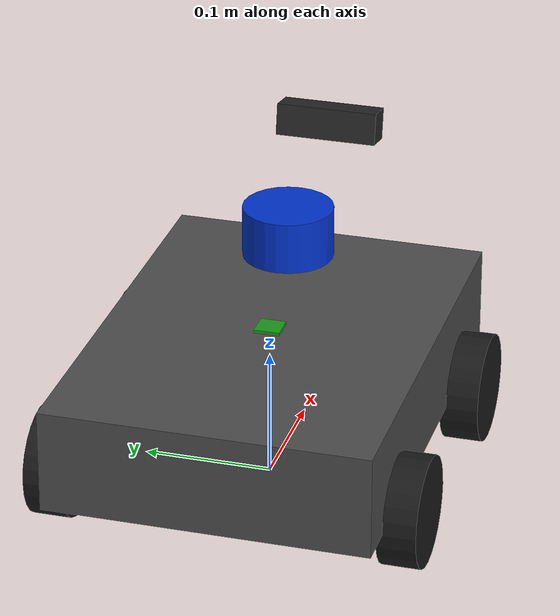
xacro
<?xml version="1.0"?>
<robot name="rover" xmlns:xacro="http://www.ros.org/wiki/xacro">

  <!-- Arguments -->
  <xacro:arg name="use_sim_time" default="false"/>
  <xacro:arg name="use_gazebo" default="true"/>

  <!-- Include modular xacro files -->
  <xacro:include filename="$(find rover_description)/urdf/inertial_macros.xacro"/>
  <xacro:include filename="$(find rover_description)/urdf/materials.xacro"/>
  <xacro:include filename="$(find rover_description)/urdf/base.xacro"/>
  <xacro:include filename="$(find rover_description)/urdf/sensors.xacro"/>

  <!-- Gazebo plugins & ros2_control (only loaded if use_gazebo is true) -->
  <xacro:if value="$(arg use_gazebo)">
    <xacro:include filename="$(find rover_description)/urdf/gazebo_plugins.xacro"/>
  </xacro:if>

</robot>

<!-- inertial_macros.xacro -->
<robot xmlns:xacro="http://www.ros.org/wiki/xacro">

  <!-- Box inertia (aligned with principal axes, origin at CoM) -->
  <xacro:macro name="box_inertia" params="m x y z">
    <inertial>
      <mass value="${m}"/>
      <inertia
        ixx="${m * (y*y + z*z) / 12.0}" ixy="0" ixz="0"
        iyy="${m * (x*x + z*z) / 12.0}" iyz="0"
        izz="${m * (x*x + y*y) / 12.0}"/>
    </inertial>
  </xacro:macro>

  <!-- Cylinder inertia (axis along z by default) -->
  <xacro:macro name="cylinder_inertia" params="m r h">
    <inertial>
      <mass value="${m}"/>
      <inertia
        ixx="${m * (3.0*r*r + h*h) / 12.0}" ixy="0" ixz="0"
        iyy="${m * (3.0*r*r + h*h) / 12.0}" iyz="0"
        izz="${m * r * r / 2.0}"/>
    </inertial>
  </xacro:macro>

  <!-- Sphere inertia -->
  <xacro:macro name="sphere_inertia" params="m r">
    <inertial>
      <mass value="${m}"/>
      <inertia
        ixx="${2.0 * m * r * r / 5.0}" ixy="0" ixz="0"
        iyy="${2.0 * m * r * r / 5.0}" iyz="0"
        izz="${2.0 * m * r * r / 5.0}"/>
    </inertial>
  </xacro:macro>

</robot>

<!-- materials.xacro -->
<!-- Material colour definitions for the inspection rover. -->
<robot xmlns:xacro="http://www.ros.org/wiki/xacro">

  <material name="chassis_grey">
    <color rgba="0.3 0.3 0.3 1.0"/>
  </material>

  <material name="wheel_black">
    <color rgba="0.1 0.1 0.1 1.0"/>
  </material>

  <material name="caster_silver">
    <color rgba="0.7 0.7 0.7 1.0"/>
  </material>

  <material name="lidar_blue">
    <color rgba="0.0 0.2 0.8 1.0"/>
  </material>

  <material name="camera_dark">
    <color rgba="0.15 0.15 0.15 1.0"/>
  </material>

  <material name="imu_green">
    <color rgba="0.1 0.6 0.1 1.0"/>
  </material>

</robot>

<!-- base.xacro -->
<robot xmlns:xacro="http://www.ros.org/wiki/xacro">

  <!-- Dimensions & Masses -->
  <xacro:property name="chassis_length" value="0.35"/>
  <xacro:property name="chassis_width" value="0.25"/>
  <xacro:property name="chassis_height" value="0.08"/>
  <xacro:property name="chassis_mass" value="2.5"/>

  <!-- Wheel specifications -->
  <xacro:property name="wheel_radius" value="0.0425"/>
  <xacro:property name="wheel_width" value="0.030"/>
  <xacro:property name="wheel_separation" value="0.27"/> <!-- Track width (y-axis separation) -->
  <xacro:property name="wheelbase" value="0.20"/>        <!-- Longitudinal axle separation (x-axis) -->
  <xacro:property name="wheel_mass" value="0.20"/>

  <!-- base_footprint is on the ground plane directly below base_link -->
  <link name="base_footprint"/>

  <joint name="base_footprint_joint" type="fixed">
    <parent link="base_footprint"/>
    <child link="base_link"/>
    <origin xyz="0 0 ${wheel_radius}" rpy="0 0 0"/>
  </joint>

  <!-- base_link (origin at wheel axle height) -->
  <link name="base_link">
    <visual>
      <origin xyz="0 0 ${chassis_height / 2.0}" rpy="0 0 0"/>
      <geometry>
        <box size="${chassis_length} ${chassis_width} ${chassis_height}"/>
      </geometry>
      <material name="chassis_grey"/>
    </visual>
    <collision>
      <origin xyz="0 0 ${chassis_height / 2.0}" rpy="0 0 0"/>
      <geometry>
        <box size="${chassis_length} ${chassis_width} ${chassis_height}"/>
      </geometry>
    </collision>
    <xacro:box_inertia m="${chassis_mass}" x="${chassis_length}" y="${chassis_width}" z="${chassis_height}"/>
  </link>

  <!-- ==================== Wheel Macro ==================== -->
  <xacro:macro name="wheel" params="prefix side_sign x_pos rpy_rot axis_z">
    <joint name="${prefix}_wheel_joint" type="continuous">
      <parent link="base_link"/>
      <child link="${prefix}_wheel_link"/>
      <origin xyz="${x_pos} ${side_sign * wheel_separation / 2.0} 0" rpy="${rpy_rot} 0 0"/>
      <axis xyz="0 0 ${axis_z}"/>
    </joint>

    <link name="${prefix}_wheel_link">
      <visual>
        <geometry>
          <cylinder radius="${wheel_radius}" length="${wheel_width}"/>
        </geometry>
        <material name="wheel_black"/>
      </visual>
      <collision>
        <geometry>
          <cylinder radius="${wheel_radius}" length="${wheel_width}"/>
        </geometry>
      </collision>
      <xacro:cylinder_inertia m="${wheel_mass}" r="${wheel_radius}" h="${wheel_width}"/>
    </link>
  </xacro:macro>

  <!-- 4-Wheel Skid-Steer Layout -->
  <!-- Left side (side_sign = 1, rpy = -pi/2, axis = 1) -->
  <xacro:wheel prefix="front_left" side_sign="1"  x_pos="${wheelbase / 2.0}"  rpy_rot="-${pi/2}" axis_z="1"/>
  <xacro:wheel prefix="rear_left"  side_sign="1"  x_pos="-${wheelbase / 2.0}" rpy_rot="-${pi/2}" axis_z="1"/>

  <!-- Right side (side_sign = -1, rpy = pi/2, axis = -1) -->
  <xacro:wheel prefix="front_right" side_sign="-1" x_pos="${wheelbase / 2.0}"  rpy_rot="${pi/2}"  axis_z="-1"/>
  <xacro:wheel prefix="rear_right"  side_sign="-1" x_pos="-${wheelbase / 2.0}" rpy_rot="${pi/2}"  axis_z="-1"/>

</robot>

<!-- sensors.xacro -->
<robot xmlns:xacro="http://www.ros.org/wiki/xacro">

  <!-- ======================== LiDAR ======================== -->
  <joint name="lidar_joint" type="fixed">
    <parent link="base_link"/>
    <child link="lidar_link"/>
    <!-- LiDAR mount: 0.14 m above base_link (x offset slightly forward or centered) -->
    <origin xyz="0.05 0 0.14" rpy="0 0 0"/>
  </joint>

  <link name="lidar_link">
    <visual>
      <origin xyz="0 0 0" rpy="0 0 0"/>
      <geometry>
        <cylinder radius="0.035" length="0.04"/>
      </geometry>
      <material name="lidar_blue"/>
    </visual>
    <collision>
      <origin xyz="0 0 0" rpy="0 0 0"/>
      <geometry>
        <cylinder radius="0.035" length="0.04"/>
      </geometry>
    </collision>
    <xacro:cylinder_inertia m="0.15" r="0.035" h="0.04"/>
  </link>

  <!-- ======================== Camera ======================== -->
  <joint name="camera_joint" type="fixed">
    <parent link="base_link"/>
    <child link="camera_link"/>
    <!-- Camera mount: 0.18 m above base_link, front edge (x=0.17), pitched -10 deg (downwards) -->
    <!-- -10 deg = -0.174533 rad in pitch (y-axis) -->
    <origin xyz="0.17 0 0.18" rpy="0 0.174533 0"/>
  </joint>

  <link name="camera_link">
    <visual>
      <origin xyz="0 0 0" rpy="0 0 0"/>
      <geometry>
        <box size="0.025 0.08 0.025"/>
      </geometry>
      <material name="camera_dark"/>
    </visual>
    <collision>
      <origin xyz="0 0 0" rpy="0 0 0"/>
      <geometry>
        <box size="0.025 0.08 0.025"/>
      </geometry>
    </collision>
    <xacro:box_inertia m="0.05" x="0.025" y="0.08" z="0.025"/>
  </link>

  <!-- Camera Optical Frame (REP-103: z forward, x right, y down) -->
  <joint name="camera_optical_joint" type="fixed">
    <parent link="camera_link"/>
    <child link="camera_optical_frame"/>
    <origin xyz="0 0 0" rpy="-${pi/2} 0 -${pi/2}"/>
  </joint>

  <link name="camera_optical_frame"/>

  <!-- ======================== IMU ======================== -->
  <joint name="imu_joint" type="fixed">
    <parent link="base_link"/>
    <child link="imu_link"/>
    <origin xyz="0 0 0.08" rpy="0 0 0"/>
  </joint>

  <link name="imu_link">
    <visual>
      <geometry>
        <box size="0.02 0.02 0.005"/>
      </geometry>
      <material name="imu_green"/>
    </visual>
    <collision>
      <geometry>
        <box size="0.02 0.02 0.005"/>
      </geometry>
    </collision>
    <xacro:box_inertia m="0.01" x="0.02" y="0.02" z="0.005"/>
  </link>

</robot>
